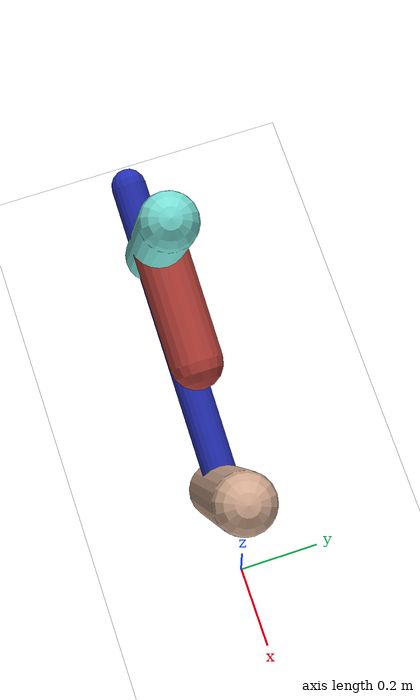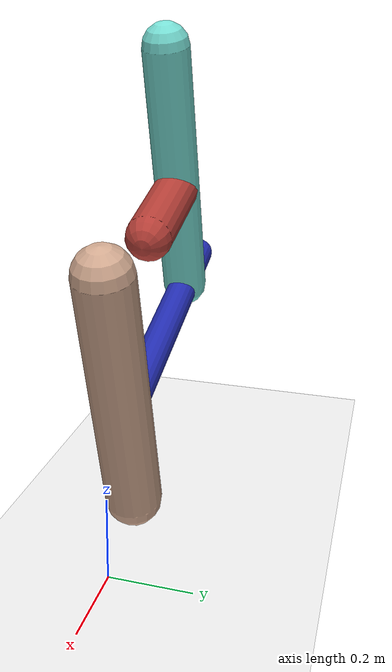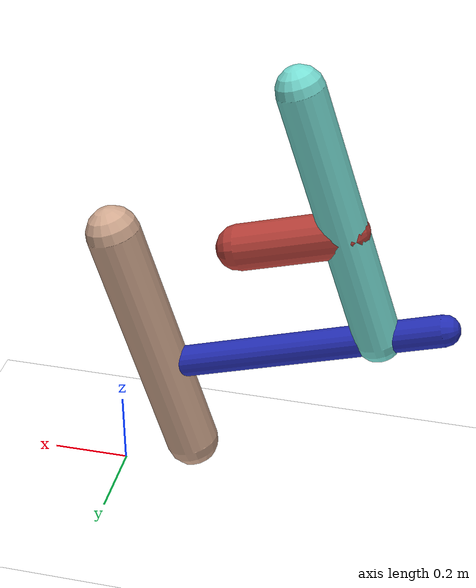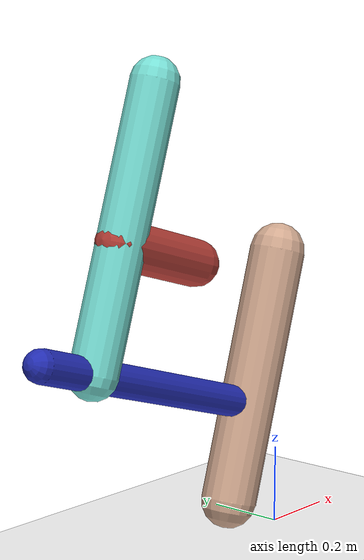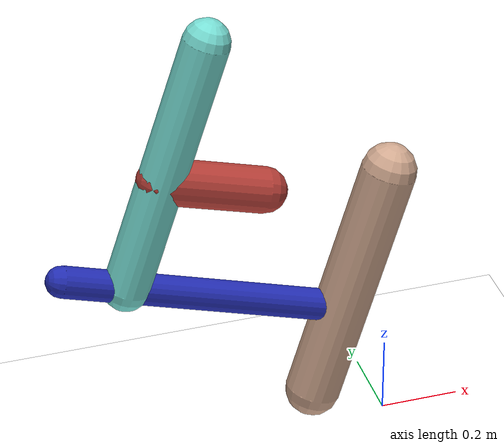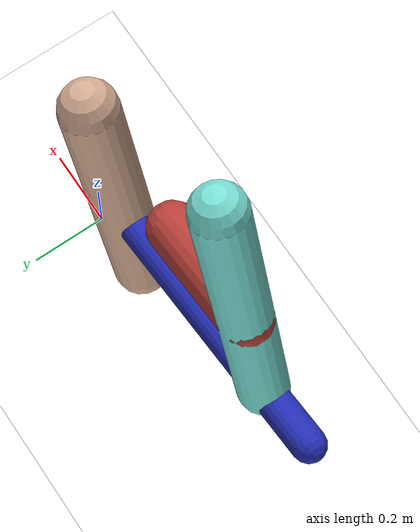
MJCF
<mujoco model="morphology">
  <option timestep="0.01"/>
  <default>
    <default class="/"/>
  </default>
  <asset>
    <texture name="texplane" type="2d" builtin="checker" rgb1="0.1 0.2 0.3" rgb2="0.2 0.3 0.4" width="300" height="300"/>
    <material name="MatPlane" class="/" texture="texplane" texrepeat="20 20" specular="1" shininess="1" reflectance="0.5"/>
  </asset>
  <worldbody>
    <light name="//unnamed_light_0" class="/" directional="true" pos="0 0 1.5" dir="0 0 -1.3" cutoff="1e+02" exponent="1" diffuse="1 1 1" specular="0.1 0.1 0.1"/>
    <geom name="ground" class="/" type="plane" size="15 15 0.5" material="MatPlane" rgba="1 1 1 1"/>
    <body name="body" pos="0 0 0.72">
      <geom name="geom0" class="/" type="capsule" contype="1" conaffinity="1" condim="3" size="0.07" rgba="0.83 0.67 0.57 1" friction="0.4 0.1 0.1" fromto="0 0 0 -0.19 0 -0.62"/>
      <body name="body1" pos="-0.12 0 -0.38">
        <geom name="geom1" class="/" type="capsule" contype="1" conaffinity="1" condim="3" size="0.04" rgba="0.14 0.18 0.71 1" friction="0.4 0.1 0.1" fromto="0 0 0 -0.71 0 0.22"/>
        <body name="body2" pos="-0.55 0 0.17">
          <geom name="geom2" class="/" type="capsule" contype="1" conaffinity="1" condim="3" size="0.059" rgba="0.47 0.88 0.84 1" friction="0.4 0.1 0.1" fromto="0 0 0 0.21 0 0.65"/>
          <body name="body3" pos="0.09 0 0.29">
            <geom name="geom3" class="/" type="capsule" contype="1" conaffinity="1" condim="3" size="0.058" rgba="0.72 0.25 0.22 1" friction="0.4 0.1 0.1" fromto="0 0 0 0.26 0 -0.075"/>
            <joint name="joint3" class="/" type="hinge" axis="0 1 0" limited="true" stiffness="20" range="-46 46" armature="0.1" damping="2"/>
          </body>
          <joint name="joint2" class="/" type="hinge" axis="0 1 0" limited="true" stiffness="20" range="-46 46" armature="0.1" damping="2"/>
        </body>
        <joint name="joint1" class="/" type="hinge" axis="0 1 0" limited="true" stiffness="20" range="-40 40" armature="0.1" damping="2"/>
      </body>
      <joint name="rootx" class="/" type="slide" axis="1 0 0" limited="false" stiffness="0" armature="0" damping="0"/>
      <joint name="rootz" class="/" type="slide" axis="0 0 1" limited="false" stiffness="0" armature="0" damping="0"/>
      <joint name="rooty" class="/" type="hinge" axis="0 1 0" limited="false" stiffness="0" armature="0" damping="0"/>
    </body>
  </worldbody>
  <actuator>
    <motor name="motor3" class="/" ctrllimited="true" ctrlrange="-1 1" gear="1.5e+02" joint="joint3"/>
    <motor name="motor2" class="/" ctrllimited="true" ctrlrange="-1 1" gear="1.2e+02" joint="joint2"/>
    <motor name="motor1" class="/" ctrllimited="true" ctrlrange="-1 1" gear="2e+02" joint="joint1"/>
  </actuator>
  <sensor>
    <subtreelinvel name="velocity" body="body"/>
  </sensor>
</mujoco>
